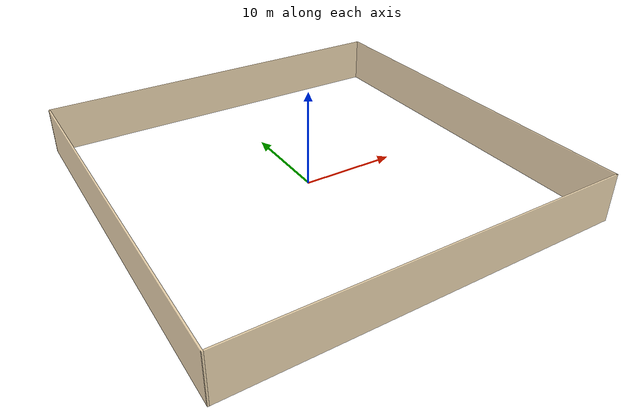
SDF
<?xml version='1.0'?>
<sdf version='1.7'>
  <model name='walls'>
    <link name='Wall_2'>
      <pose>-20 -0.075 0 0 -0 1.5708</pose>
      <self_collide>0</self_collide>
      <enable_wind>0</enable_wind>
      <kinematic>0</kinematic>
      <gravity>1</gravity>
      <inertial>
        <mass>1</mass>
        <pose>0 0 0 0 -0 0</pose>
        <inertia>
          <ixx>1</ixx>
          <ixy>0</ixy>
          <ixz>0</ixz>
          <iyy>1</iyy>
          <iyz>0</iyz>
          <izz>1</izz>
        </inertia>
      </inertial>
      <visual name='Wall_2_Visual'>
        <pose>0 0 2.5 0 -0 0</pose>
        <geometry>
          <box>
            <size>40 0.15 5</size>
          </box>
        </geometry>
        <material>
          <script>
            <uri>file://media/materials/scripts/gazebo.material</uri>
            <name>Gazebo/Grey</name>
          </script>
          <ambient>0.922 0.808 0.616 1</ambient>
          <shader type='pixel'>
            <normal_map>__default__</normal_map>
          </shader>
          <diffuse>0.7 0.7 0.7 1</diffuse>
          <specular>0.01 0.01 0.01 1</specular>
          <emissive>0 0 0 1</emissive>
        </material>
        <meta>
          <layer>0</layer>
        </meta>
        <transparency>0.2</transparency>
        <cast_shadows>1</cast_shadows>
      </visual>
      <collision name='Wall_2_Collision'>
        <laser_retro>0</laser_retro>
        <max_contacts>10</max_contacts>
        <pose>0 0 2.5 0 -0 0</pose>
        <geometry>
          <box>
            <size>40 0.15 5</size>
          </box>
        </geometry>
        <surface>
          <friction>
            <ode>
              <mu>1</mu>
              <mu2>1</mu2>
              <fdir1>0 0 0</fdir1>
              <slip1>0</slip1>
              <slip2>0</slip2>
            </ode>
            <torsional>
              <coefficient>1</coefficient>
              <patch_radius>0</patch_radius>
              <surface_radius>0</surface_radius>
              <use_patch_radius>1</use_patch_radius>
              <ode>
                <slip>0</slip>
              </ode>
            </torsional>
          </friction>
          <bounce>
            <restitution_coefficient>0</restitution_coefficient>
            <threshold>1e+06</threshold>
          </bounce>
          <contact>
            <collide_without_contact>0</collide_without_contact>
            <collide_without_contact_bitmask>1</collide_without_contact_bitmask>
            <collide_bitmask>1</collide_bitmask>
            <ode>
              <soft_cfm>0</soft_cfm>
              <soft_erp>0.2</soft_erp>
              <kp>1e+13</kp>
              <kd>1</kd>
              <max_vel>0.01</max_vel>
              <min_depth>0</min_depth>
            </ode>
            <bullet>
              <split_impulse>1</split_impulse>
              <split_impulse_penetration_threshold>-0.01</split_impulse_penetration_threshold>
              <soft_cfm>0</soft_cfm>
              <soft_erp>0.2</soft_erp>
              <kp>1e+13</kp>
              <kd>1</kd>
            </bullet>
          </contact>
        </surface>
      </collision>
    </link>
    <link name='Wall_5'>
      <pose>0 20 0 0 -0 0</pose>
      <self_collide>0</self_collide>
      <enable_wind>0</enable_wind>
      <kinematic>0</kinematic>
      <gravity>1</gravity>
      <inertial>
        <mass>1</mass>
        <pose>0 0 0 0 -0 0</pose>
        <inertia>
          <ixx>1</ixx>
          <ixy>0</ixy>
          <ixz>0</ixz>
          <iyy>1</iyy>
          <iyz>0</iyz>
          <izz>1</izz>
        </inertia>
      </inertial>
      <visual name='Wall_5_Visual'>
        <pose>0 0 2.5 0 -0 0</pose>
        <geometry>
          <box>
            <size>40.15 0.15 5</size>
          </box>
        </geometry>
        <material>
          <script>
            <uri>file://media/materials/scripts/gazebo.material</uri>
            <name>Gazebo/Grey</name>
          </script>
          <ambient>0.922 0.808 0.616 1</ambient>
          <shader type='pixel'>
            <normal_map>__default__</normal_map>
          </shader>
          <diffuse>0.7 0.7 0.7 1</diffuse>
          <specular>0.01 0.01 0.01 1</specular>
          <emissive>0 0 0 1</emissive>
        </material>
        <meta>
          <layer>0</layer>
        </meta>
        <transparency>0.2</transparency>
        <cast_shadows>1</cast_shadows>
      </visual>
      <collision name='Wall_5_Collision'>
        <laser_retro>0</laser_retro>
        <max_contacts>10</max_contacts>
        <pose>0 0 2.5 0 -0 0</pose>
        <geometry>
          <box>
            <size>40.15 0.15 5</size>
          </box>
        </geometry>
        <surface>
          <friction>
            <ode>
              <mu>1</mu>
              <mu2>1</mu2>
              <fdir1>0 0 0</fdir1>
              <slip1>0</slip1>
              <slip2>0</slip2>
            </ode>
            <torsional>
              <coefficient>1</coefficient>
              <patch_radius>0</patch_radius>
              <surface_radius>0</surface_radius>
              <use_patch_radius>1</use_patch_radius>
              <ode>
                <slip>0</slip>
              </ode>
            </torsional>
          </friction>
          <bounce>
            <restitution_coefficient>0</restitution_coefficient>
            <threshold>1e+06</threshold>
          </bounce>
          <contact>
            <collide_without_contact>0</collide_without_contact>
            <collide_without_contact_bitmask>1</collide_without_contact_bitmask>
            <collide_bitmask>1</collide_bitmask>
            <ode>
              <soft_cfm>0</soft_cfm>
              <soft_erp>0.2</soft_erp>
              <kp>1e+13</kp>
              <kd>1</kd>
              <max_vel>0.01</max_vel>
              <min_depth>0</min_depth>
            </ode>
            <bullet>
              <split_impulse>1</split_impulse>
              <split_impulse_penetration_threshold>-0.01</split_impulse_penetration_threshold>
              <soft_cfm>0</soft_cfm>
              <soft_erp>0.2</soft_erp>
              <kp>1e+13</kp>
              <kd>1</kd>
            </bullet>
          </contact>
        </surface>
      </collision>
    </link>
    <link name='Wall_7'>
      <pose>20 0 0 0 0 -1.5708</pose>
      <self_collide>0</self_collide>
      <enable_wind>0</enable_wind>
      <kinematic>0</kinematic>
      <gravity>1</gravity>
      <inertial>
        <mass>1</mass>
        <pose>0 0 0 0 -0 0</pose>
        <inertia>
          <ixx>1</ixx>
          <ixy>0</ixy>
          <ixz>0</ixz>
          <iyy>1</iyy>
          <iyz>0</iyz>
          <izz>1</izz>
        </inertia>
      </inertial>
      <visual name='Wall_7_Visual'>
        <pose>0 0 2.5 0 -0 0</pose>
        <geometry>
          <box>
            <size>40.15 0.15 5</size>
          </box>
        </geometry>
        <material>
          <script>
            <uri>file://media/materials/scripts/gazebo.material</uri>
            <name>Gazebo/Grey</name>
          </script>
          <ambient>0.922 0.808 0.616 1</ambient>
          <shader type='pixel'>
            <normal_map>__default__</normal_map>
          </shader>
          <diffuse>0.7 0.7 0.7 1</diffuse>
          <specular>0.01 0.01 0.01 1</specular>
          <emissive>0 0 0 1</emissive>
        </material>
        <meta>
          <layer>0</layer>
        </meta>
        <transparency>0.2</transparency>
        <cast_shadows>1</cast_shadows>
      </visual>
      <collision name='Wall_7_Collision'>
        <laser_retro>0</laser_retro>
        <max_contacts>10</max_contacts>
        <pose>0 0 2.5 0 -0 0</pose>
        <geometry>
          <box>
            <size>40.15 0.15 5</size>
          </box>
        </geometry>
        <surface>
          <friction>
            <ode>
              <mu>1</mu>
              <mu2>1</mu2>
              <fdir1>0 0 0</fdir1>
              <slip1>0</slip1>
              <slip2>0</slip2>
            </ode>
            <torsional>
              <coefficient>1</coefficient>
              <patch_radius>0</patch_radius>
              <surface_radius>0</surface_radius>
              <use_patch_radius>1</use_patch_radius>
              <ode>
                <slip>0</slip>
              </ode>
            </torsional>
          </friction>
          <bounce>
            <restitution_coefficient>0</restitution_coefficient>
            <threshold>1e+06</threshold>
          </bounce>
          <contact>
            <collide_without_contact>0</collide_without_contact>
            <collide_without_contact_bitmask>1</collide_without_contact_bitmask>
            <collide_bitmask>1</collide_bitmask>
            <ode>
              <soft_cfm>0</soft_cfm>
              <soft_erp>0.2</soft_erp>
              <kp>1e+13</kp>
              <kd>1</kd>
              <max_vel>0.01</max_vel>
              <min_depth>0</min_depth>
            </ode>
            <bullet>
              <split_impulse>1</split_impulse>
              <split_impulse_penetration_threshold>-0.01</split_impulse_penetration_threshold>
              <soft_cfm>0</soft_cfm>
              <soft_erp>0.2</soft_erp>
              <kp>1e+13</kp>
              <kd>1</kd>
            </bullet>
          </contact>
        </surface>
      </collision>
    </link>
    <link name='Wall_9'>
      <pose>0 -20 0 0 -0 3.14159</pose>
      <self_collide>0</self_collide>
      <enable_wind>0</enable_wind>
      <kinematic>0</kinematic>
      <gravity>1</gravity>
      <inertial>
        <mass>1</mass>
        <pose>0 0 0 0 -0 0</pose>
        <inertia>
          <ixx>1</ixx>
          <ixy>0</ixy>
          <ixz>0</ixz>
          <iyy>1</iyy>
          <iyz>0</iyz>
          <izz>1</izz>
        </inertia>
      </inertial>
      <visual name='Wall_9_Visual'>
        <pose>0 0 2.5 0 -0 0</pose>
        <geometry>
          <box>
            <size>40.15 0.15 5</size>
          </box>
        </geometry>
        <material>
          <script>
            <uri>file://media/materials/scripts/gazebo.material</uri>
            <name>Gazebo/Grey</name>
          </script>
          <ambient>0.922 0.808 0.616 1</ambient>
          <shader type='pixel'>
            <normal_map>__default__</normal_map>
          </shader>
          <diffuse>0.7 0.7 0.7 1</diffuse>
          <specular>0.01 0.01 0.01 1</specular>
          <emissive>0 0 0 1</emissive>
        </material>
        <meta>
          <layer>0</layer>
        </meta>
        <transparency>0.2</transparency>
        <cast_shadows>1</cast_shadows>
      </visual>
      <collision name='Wall_9_Collision'>
        <laser_retro>0</laser_retro>
        <max_contacts>10</max_contacts>
        <pose>0 0 2.5 0 -0 0</pose>
        <geometry>
          <box>
            <size>40.15 0.15 5</size>
          </box>
        </geometry>
        <surface>
          <friction>
            <ode>
              <mu>1</mu>
              <mu2>1</mu2>
              <fdir1>0 0 0</fdir1>
              <slip1>0</slip1>
              <slip2>0</slip2>
            </ode>
            <torsional>
              <coefficient>1</coefficient>
              <patch_radius>0</patch_radius>
              <surface_radius>0</surface_radius>
              <use_patch_radius>1</use_patch_radius>
              <ode>
                <slip>0</slip>
              </ode>
            </torsional>
          </friction>
          <bounce>
            <restitution_coefficient>0</restitution_coefficient>
            <threshold>1e+06</threshold>
          </bounce>
          <contact>
            <collide_without_contact>0</collide_without_contact>
            <collide_without_contact_bitmask>1</collide_without_contact_bitmask>
            <collide_bitmask>1</collide_bitmask>
            <ode>
              <soft_cfm>0</soft_cfm>
              <soft_erp>0.2</soft_erp>
              <kp>1e+13</kp>
              <kd>1</kd>
              <max_vel>0.01</max_vel>
              <min_depth>0</min_depth>
            </ode>
            <bullet>
              <split_impulse>1</split_impulse>
              <split_impulse_penetration_threshold>-0.01</split_impulse_penetration_threshold>
              <soft_cfm>0</soft_cfm>
              <soft_erp>0.2</soft_erp>
              <kp>1e+13</kp>
              <kd>1</kd>
            </bullet>
          </contact>
        </surface>
      </collision>
    </link>
    <static>1</static>
    <allow_auto_disable>1</allow_auto_disable>
  </model>
</sdf>
